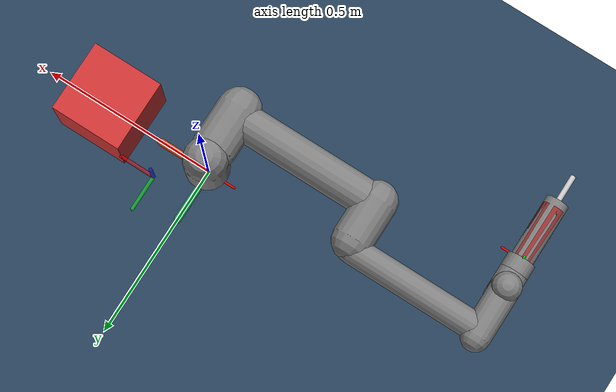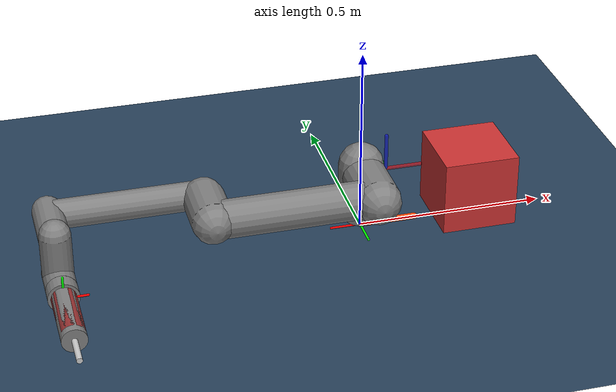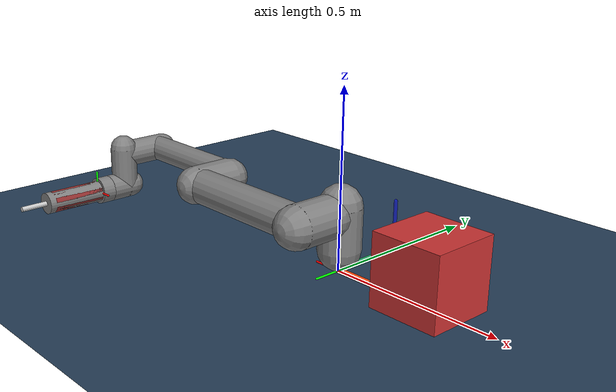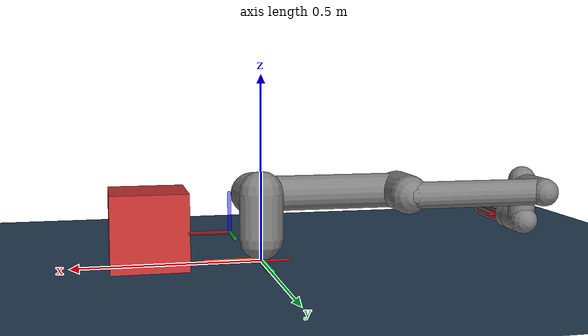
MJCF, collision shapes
<mujoco model="ur5e scene">
  <compiler angle="radian" meshdir="assets" autolimits="true"/>
  <option integrator="implicitfast"/>
  <default>
    <default class="ur5e">
      <material specular="0.5" shininess="0.25"/>
      <joint axis="0 1 0" range="-6.28319 6.28319" armature="0.1"/>
      <general gaintype="fixed" biastype="affine" ctrlrange="-6.2831 6.2831" gainprm="2000" biasprm="0 -2000 -400" forcerange="-150 150"/>
      <default class="size3">
        <default class="size3_limited">
          <joint range="-3.1415 3.1415"/>
          <general ctrlrange="-3.1415 3.1415"/>
        </default>
      </default>
      <default class="size1">
        <general gainprm="500" biasprm="0 -500 -100" forcerange="-28 28"/>
      </default>
      <default class="visual">
        <geom type="mesh" contype="0" conaffinity="0" group="2"/>
      </default>
      <default class="collision">
        <geom type="capsule" group="3"/>
        <default class="eef_collision">
          <geom type="cylinder"/>
        </default>
      </default>
      <site size="0.001" rgba="0.5 0.5 0.5 0.3" group="4"/>
    </default>
  </default>
  <asset>
    <material class="ur5e" name="black" rgba="0.033 0.033 0.033 1"/>
    <material class="ur5e" name="jointgray" rgba="0.278 0.278 0.278 1"/>
    <material class="ur5e" name="linkgray" rgba="0.82 0.82 0.82 1"/>
    <material class="ur5e" name="urblue" rgba="0.49 0.678 0.8 1"/>
    <mesh file="base_0.obj"/>
    <mesh file="base_1.obj"/>
    <mesh file="shoulder_0.obj"/>
    <mesh file="shoulder_1.obj"/>
    <mesh file="shoulder_2.obj"/>
    <mesh file="upperarm_0.obj"/>
    <mesh file="upperarm_1.obj"/>
    <mesh file="upperarm_2.obj"/>
    <mesh file="upperarm_3.obj"/>
    <mesh file="forearm_0.obj"/>
    <mesh file="forearm_1.obj"/>
    <mesh file="forearm_2.obj"/>
    <mesh file="forearm_3.obj"/>
    <mesh file="wrist1_0.obj"/>
    <mesh file="wrist1_1.obj"/>
    <mesh file="wrist1_2.obj"/>
    <mesh file="wrist2_0.obj"/>
    <mesh file="wrist2_1.obj"/>
    <mesh file="wrist2_2.obj"/>
    <mesh file="wrist3.obj"/>
  </asset>
  <worldbody>
    <light name="spotlight" mode="targetbodycom" target="wrist_2_link" pos="0 -1 2"/>
    <body name="base" quat="0 0 0 -1" childclass="ur5e">
      <inertial mass="4.0" pos="0 0 0" diaginertia="0.00443333156 0.00443333156 0.0072"/>
      <!-- Reference frame: base -->
      <geom type="capsule" fromto="0 0 0 0.08 0 0" rgba="1 0 0 1" size="0.003" contype="0" conaffinity="0"/>
      <geom type="capsule" fromto="0 0 0 0 0.08 0" rgba="0 1 0 1" size="0.003" contype="0" conaffinity="0"/>
      <geom type="capsule" fromto="0 0 0 0 0 0.08" rgba="0 0 1 1" size="0.003" contype="0" conaffinity="0"/>
      <geom mesh="base_0" material="black" class="visual"/>
      <geom mesh="base_1" material="jointgray" class="visual"/>
      <body name="shoulder_link" pos="0 0 0.163">
        <inertial mass="3.7" pos="0 0 0" diaginertia="0.0102675 0.0102675 0.00666"/>
        <!-- Reference frame: shoulder_link -->
        <joint name="shoulder_pan_joint" class="size3" axis="0 0 1"/>
        <geom mesh="shoulder_0" material="urblue" class="visual"/>
        <geom mesh="shoulder_1" material="black" class="visual"/>
        <geom mesh="shoulder_2" material="jointgray" class="visual"/>
        <geom name="shoulder_collision" class="collision" size="0.06 0.06" pos="0 0 -0.04"/>
        <body name="upper_arm_link" pos="0 0.138 0" quat="1 0 1 0">
          <inertial mass="8.393" pos="0 0 0.2125" diaginertia="0.133886 0.133886 0.0151074"/>
          <!-- Reference frame: upper_arm_link -->
          <joint name="shoulder_lift_joint" class="size3"/>
          <geom mesh="upperarm_0" material="linkgray" class="visual"/>
          <geom mesh="upperarm_1" material="black" class="visual"/>
          <geom mesh="upperarm_2" material="jointgray" class="visual"/>
          <geom mesh="upperarm_3" material="urblue" class="visual"/>
          <geom name="upper_arm_collision_outer" class="collision" pos="0 -0.04 0" quat="1 1 0 0" size="0.06 0.06"/>
          <geom name="upper_arm_collision_inner" class="collision" size="0.05 0.2" pos="0 0 0.2"/>
          <body name="forearm_link" pos="0 -0.131 0.425">
            <inertial mass="2.275" pos="0 0 0.196" diaginertia="0.0311796 0.0311796 0.004095"/>
            <!-- Reference frame: forearm_link -->
            <joint name="elbow_joint" class="size3_limited"/>
            <geom mesh="forearm_0" material="urblue" class="visual"/>
            <geom mesh="forearm_1" material="linkgray" class="visual"/>
            <geom mesh="forearm_2" material="black" class="visual"/>
            <geom mesh="forearm_3" material="jointgray" class="visual"/>
            <geom name="forearm_collision_outer" class="collision" pos="0 0.08 0" quat="1 1 0 0" size="0.055 0.06"/>
            <geom name="forearm_collision_inner" class="collision" size="0.038 0.19" pos="0 0 0.2"/>
            <body name="wrist_1_link" pos="0 0 0.392" quat="1 0 1 0">
              <inertial mass="1.219" pos="0 0.127 0" diaginertia="0.0025599 0.0025599 0.0021942"/>
              <!-- Reference frame: wrist_1_link -->
              <joint name="wrist_1_joint" class="size1"/>
              <geom mesh="wrist1_0" material="black" class="visual"/>
              <geom mesh="wrist1_1" material="urblue" class="visual"/>
              <geom mesh="wrist1_2" material="jointgray" class="visual"/>
              <geom name="wrist_1_collision" class="collision" pos="0 0.05 0" quat="1 1 0 0" size="0.04 0.07"/>
              <body name="wrist_2_link" pos="0 0.127 0">
                <inertial mass="1.219" pos="0 0 0.1" diaginertia="0.0025599 0.0025599 0.0021942"/>
                <!-- Reference frame: wrist_2_link -->
                <joint name="wrist_2_joint" axis="0 0 1" class="size1"/>
                <geom mesh="wrist2_0" material="black" class="visual"/>
                <geom mesh="wrist2_1" material="urblue" class="visual"/>
                <geom mesh="wrist2_2" material="jointgray" class="visual"/>
                <geom name="wrist_2_collision_lower" class="collision" size="0.04 0.06" pos="0 0 0.04"/>
                <geom name="wrist_2_collision_upper" class="collision" pos="0 0.02 0.1" quat="1 1 0 0" size="0.04 0.04"/>
                <body name="wrist_3_link" pos="0 0 0.1">
                  <inertial mass="0.1889" pos="0 0.0771683 0" quat="1 0 0 1" diaginertia="0.000132134 9.90863e-05 9.90863e-05"/>
                  <!-- Reference frame: wrist_3_link -->
                  <joint name="wrist_3_joint" class="size1"/>
                  <geom material="linkgray" mesh="wrist3" class="visual"/>
                  <geom name="wrist_3_collision" class="eef_collision" pos="0 0.08 0" quat="1 1 0 0" size="0.04 0.02"/>
                  <site name="ee_site" pos="0 0.1 0" quat="0.7071 -0.7071 0 0"/>
                  <body name="ee_frame_visual_only" pos="0 0.1 0" quat="0.7071 -0.7071 0 0">
                      <geom type="capsule" fromto="0 0 0 0.05 0 0" rgba="1 0 0 1" size="0.002" contype="0" conaffinity="0"/>
                      <geom type="capsule" fromto="0 0 0 0 0.05 0" rgba="0 1 0 1" size="0.002" contype="0" conaffinity="0"/>
                      <geom type="capsule" fromto="0 0 0 0 0 0.05" rgba="0 0 1 1" size="0.002" contype="0" conaffinity="0"/>
                      <!-- The tool is imported by a python code -->

                      <!-- Reference frame attached @ tool tip for screwing (T) -->
                      <body name="tool_frame" pos="0 0 0" quat="1 0 0 0">
                        <site name="tool_site" pos="0 0 0" quat="1 0 0 0"/>
                        <geom type="capsule" fromto="0 0 0 0.06 0 0" rgba="1 0 0 1" size="0.003" contype="0" conaffinity="0"/>
                        <geom type="capsule" fromto="0 0 0 0 0.06 0" rgba="0 1 0 1" size="0.003" contype="0" conaffinity="0"/>
                        <geom type="capsule" fromto="0 0 0 0 0 0.06" rgba="0 0 1 1" size="0.003" contype="0" conaffinity="0"/>
                    </body>
                  <body name="screw_top" pos="0 0 0">
        <inertial mass="1.5" pos="0 0 0.08" diaginertia="0.00860 0.00860 0.000768"/>
        <geom type="sphere" size="0.005" pos="0 0 0.08" rgba="1 0 1 1" contype="0" conaffinity="0" group="2"/>
        <geom type="cylinder" size="0.032 0.08" pos="0 0 0.08" contype="0" conaffinity="0" group="2" rgba="0.6 0.2 0.2 1"/>
        <geom type="cylinder" size="0.0075 0.05" pos="0 0 0.21" contype="0" conaffinity="0" group="2" rgba="0.8 0.8 0.8 1"/>
        <geom name="screw_upper_collision" class="eef_collision" size="0.032 0.10" pos="0 0 0.08"/>
        <geom name="screw_lower_collision" class="eef_collision" size="0.0075 0.05" pos="0 0 0.21"/>
      </body>
    </body>
                </body>
              </body>
            </body>
          </body>
        </body>
      </body>
    </body>
  </worldbody>
  <actuator>
    <motor joint="shoulder_pan_joint" gear="1" forcerange="-300 300"/>
    <motor joint="shoulder_lift_joint" gear="1" forcerange="-300 300"/>
    <motor joint="elbow_joint" gear="1" forcerange="-300 300"/>
    <motor joint="wrist_1_joint" gear="1" forcerange="-300 300"/>
    <motor joint="wrist_2_joint" gear="1" forcerange="-300 300"/>
    <motor joint="wrist_3_joint" gear="1" forcerange="-300 300"/>
  </actuator>
  <keyframe>
    <key name="home" qpos="-1.5708 -1.5708 1.5708 -1.5708 -1.5708 0" ctrl="-1.5708 -1.5708 1.5708 -1.5708 -1.5708 0"/>
  </keyframe>
<statistic center="0.3 0 0.4" extent="0.8"/>

  <visual>
    <headlight diffuse="0.6 0.6 0.6" ambient="0.1 0.1 0.1" specular="0 0 0"/>
    <rgba haze="0.15 0.25 0.35 1"/>
    <global azimuth="120" elevation="-20"/>
  </visual>

  <asset>
    <texture type="skybox" builtin="gradient" rgb1="0.3 0.5 0.7" rgb2="0 0 0" width="512" height="3072"/>
    <texture type="2d" name="groundplane" builtin="checker" mark="edge" rgb1="0.2 0.3 0.4" rgb2="0.1 0.2 0.3" markrgb="0.8 0.8 0.8" width="300" height="300"/>
    <material name="groundplane" texture="groundplane" texuniform="true" texrepeat="5 5" reflectance="0.2"/>
  </asset>

  <worldbody>
    <light pos="0 0 1.5" dir="0 0 -1" directional="true"/>
    <geom name="floor" size="0 0 0.05" type="plane" material="groundplane"/>
    <!-- Definition of the world frame -->
    <body name="world_frame" pos="0.0 0.0 0.0">
        <geom name="world_x_axis" type="capsule" fromto="0 0 0 0.15 0 0" size="0.01" rgba="0.996 0.302 0.067 1" contype="0" conaffinity="0"/>
        <geom name="world_y_axis" type="capsule" fromto="0 0 0 0 0.15 0" size="0.01" rgba="0.149 0.611 0.384 1" contype="0" conaffinity="0"/>
        <geom name="world_z_axis" type="capsule" fromto="0 0 0 0 0 0.15" size="0.01" rgba="0.435 0.717 0.84 1" contype="0" conaffinity="0"/>
    </body>

    <!-- Definition of the forces (just for visualization) -->

    <!-- STATIC OBSTACLE: a 0.2&#226;&#8364;&#175;m cube centered at (0.3, 0, 0.1) -->
    <geom name="obstacle" type="box" pos="0.3 0 0.1" size="0.1 0.1 0.1" rgba="0.8 0.2 0.2 1" contype="1" conaffinity="1"/>

  <body name="reference_target_1" pos="0.1 0.1 0.1"><geom name="reference_x_axis1" type="capsule" fromto="0 0 0 0.1 0 0" size="0.005" rgba="1 0 0 0.5" contype="0" conaffinity="0"/><geom name="reference_y_axis1" type="capsule" fromto="0 0 0 0 0.1 0" size="0.005" rgba="0 1 0 0.5" contype="0" conaffinity="0"/><geom name="reference_z_axis1" type="capsule" fromto="0 0 0 0 0 0.1" size="0.005" rgba="0 0 1 0.5" contype="0" conaffinity="0"/></body><body name="reference_target_2" pos="0.1 0.1 0.1"><geom name="reference_x_axis2" type="capsule" fromto="0 0 0 0.1 0 0" size="0.005" rgba="1 0 0 0.5" contype="0" conaffinity="0"/><geom name="reference_y_axis2" type="capsule" fromto="0 0 0 0 0.1 0" size="0.005" rgba="0 1 0 0.5" contype="0" conaffinity="0"/><geom name="reference_z_axis2" type="capsule" fromto="0 0 0 0 0 0.1" size="0.005" rgba="0 0 1 0.5" contype="0" conaffinity="0"/></body></worldbody>

</mujoco>
